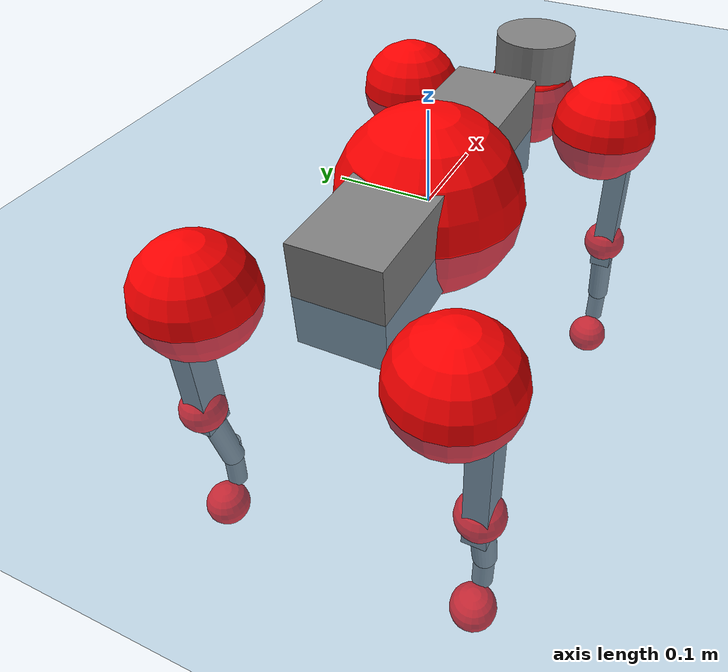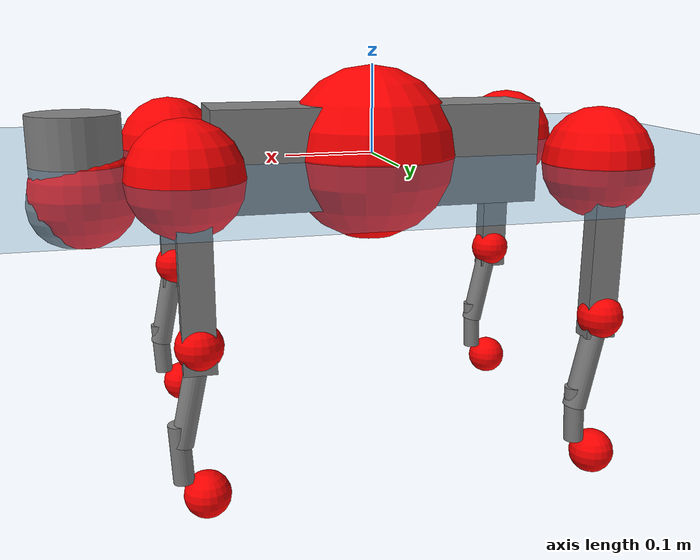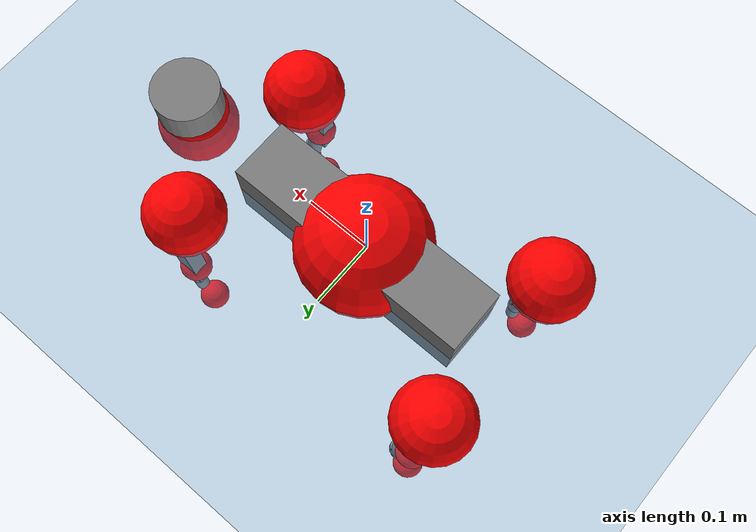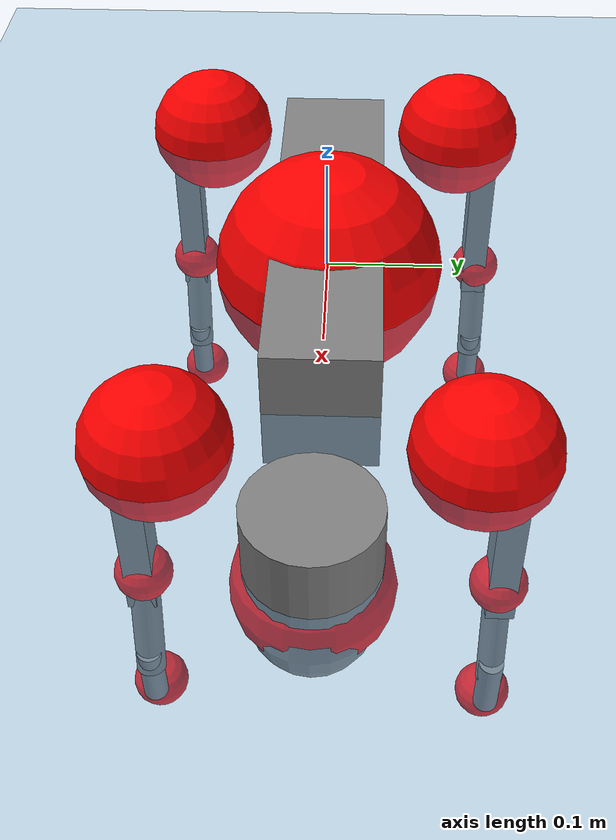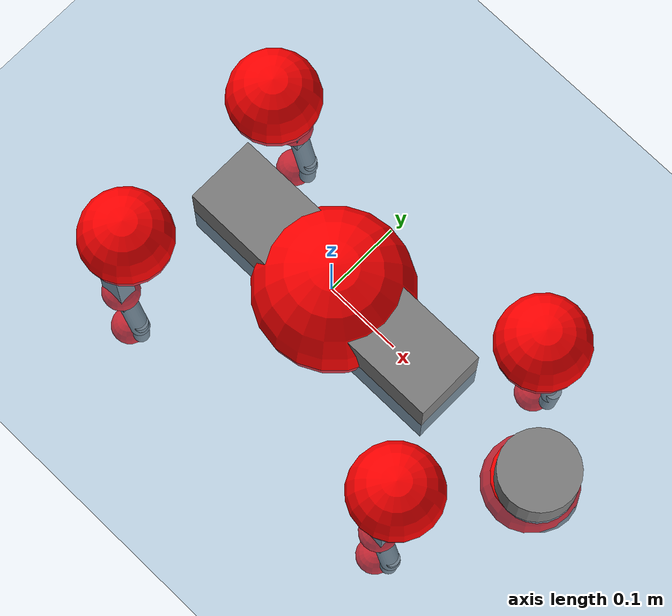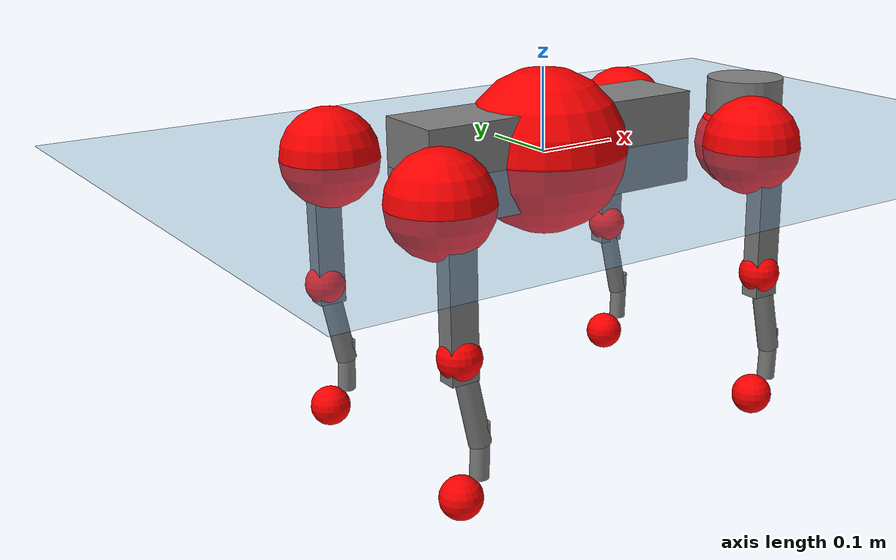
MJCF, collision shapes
<mujoco model="go2">
  <compiler angle="radian" assetdir="assets" balanceinertia="true" inertiafromgeom="false"/>

  <option timestep="0.005" density="1.2" viscosity="2e-05"/>

  <size nkey="1"/>

  <visual>
    <quality shadowsize="8192"/>
    <map shadowclip="0.5"/>
  </visual>

  <default>
    <default class="/">
      <geom contype="0" conaffinity="0" group="1" solref="-1000 -80"/>
      <site size="0.01 0.005 0.005" group="5"/>
      <general forcelimited="true" biastype="affine" gainprm="20" biasprm="0 -20 -0.5"/>
      <default class="go2">
        <joint armature="0.01" damping="0.01" frictionloss="0.2"/>
        <geom condim="1" margin="0.001"/>
        <default class="visual">
          <geom type="mesh" group="2"/>
        </default>
        <default class="collision">
          <geom group="3"/>
          <default class="foot">
            <geom size="0.022 0 0" condim="6" priority="1" friction="0.8 0.02 0.01" solimp="0.015 1 0.022"/>
          </default>
        </default>
        <default class="reward_collision_sphere">
          <geom group="5" rgba="1 0 0 1"/>
        </default>
      </default>
    </default>
  </default>

  <asset>
    <texture type="skybox" colorspace="auto" name="//unnamed_texture_0" builtin="gradient" rgb1="0.95 0.95 0.95" rgb2="0.95 0.95 0.95" width="100" height="600"/>
    <texture type="2d" colorspace="auto" name="texplane" builtin="checker" rgb1="0.345 0.575 0.748" rgb2="0.345 0.575 0.748" markrgb="1 1 1" width="512" height="512"/>
    <material name="MatPlane" class="/" texture="texplane" texuniform="true" texrepeat="2 2" specular="0.9"/>
    <material name="metal" class="/" rgba="0.9 0.95 0.95 1"/>
    <material name="black" class="/" rgba="0 0 0 1"/>
    <material name="white" class="/"/>
    <material name="gray" class="/" rgba="0.671705 0.692426 0.77427 1"/>
    <mesh name="base_0" class="/" file="base_0.obj"/>
    <mesh name="base_1" class="/" file="base_1.obj"/>
    <mesh name="base_2" class="/" file="base_2.obj"/>
    <mesh name="base_3" class="/" file="base_3.obj"/>
    <mesh name="base_4" class="/" file="base_4.obj"/>
    <mesh name="hip_0" class="/" file="hip_0.obj"/>
    <mesh name="hip_1" class="/" file="hip_1.obj"/>
    <mesh name="thigh_0" class="/" file="thigh_0.obj"/>
    <mesh name="thigh_1" class="/" file="thigh_1.obj"/>
    <mesh name="thigh_mirror_0" class="/" file="thigh_mirror_0.obj"/>
    <mesh name="thigh_mirror_1" class="/" file="thigh_mirror_1.obj"/>
    <mesh name="calf_0" class="/" file="calf_0.obj"/>
    <mesh name="calf_1" class="/" file="calf_1.obj"/>
    <mesh name="calf_mirror_0" class="/" file="calf_mirror_0.obj"/>
    <mesh name="calf_mirror_1" class="/" file="calf_mirror_1.obj"/>
    <mesh name="foot" class="/" file="foot.obj"/>
  </asset>

  <worldbody>
    <geom name="floor" class="/" size="100 100 0.125" type="plane" group="0" material="MatPlane"/>
    <light name="toplight_shadow" class="/" pos="0 0 5" dir="0.0990148 0.0990148 -0.990148" type="directional" ambient="0.04 0.04 0.04" diffuse="0.55 0.55 0.55" specular="0.12 0.12 0.12"/>
    <light name="toplight_fill" class="/" pos="0 0 5" dir="0.0990148 0.0990148 -0.990148" type="directional" castshadow="false" ambient="0.04 0.04 0.04" diffuse="0.3 0.3 0.3" specular="0.08 0.08 0.08"/>
    <body name="trunk" childclass="go2" pos="0.00243949 0.00139478 0.0008201" quat="1 4.55777e-05 -4.82364e-05 -2.30932e-05">
      <inertial pos="0.024095 0.000493083 -0.00401684" quat="0.00416052 0.713521 -0.0126263 0.700508" mass="6.6874" diaginertia="0.21464 0.142125 0.00601671"/>
      <joint name="//unnamed_joint_0" type="free" armature="0" damping="0" frictionloss="0"/>
      <geom name="//unnamed_geom_1" class="visual" material="black" mesh="base_0"/>
      <geom name="//unnamed_geom_2" class="visual" material="black" mesh="base_1"/>
      <geom name="//unnamed_geom_3" class="visual" material="black" mesh="base_2"/>
      <geom name="//unnamed_geom_4" class="visual" material="white" mesh="base_3"/>
      <geom name="//unnamed_geom_5" class="visual" material="gray" mesh="base_4"/>
      <geom name="trunk_1" class="collision" size="0.185257 0.0460433 0.0561384" type="box"/>
      <geom name="trunk_2" class="collision" size="0.0492442 0.0443198" pos="0.323424 0 0.00755981" type="cylinder"/>
      <geom name="trunk_3" class="collision" size="0.0462896" pos="0.332503 0 -0.0453589"/>
      <geom name="//unnamed_geom_9" class="reward_collision_sphere" size="0.0984884"/>
      <geom name="//unnamed_geom_10" class="reward_collision_sphere" size="0.0590931" pos="0.31775 0 -0.0340192"/>
      <site name="imu" pos="-0.0279645 0.00509917 0.0226543" size="0.00984884"/>
      <camera name="track" pos="0 -2.1277 0" quat="0.707107 0.707107 0 0" mode="trackcom"/>
      <camera name="ego_camera" pos="0.354064 0 0.0340192" quat="-0.5 -0.5 0.5 0.5"/>
      <body name="FL_hip" pos="0.21836 0.0494582 -0.00188085" quat="0.999999 0.000605385 0.000586281 -0.000808745">
        <inertial pos="-0.00831677 0.000850356 -0.000528859" quat="0.496706 0.497941 0.505781 0.499524" mass="0.652443" diaginertia="0.00167775 0.000785054 0.000120334"/>
        <joint name="FL_hip_joint" pos="0 0 0" axis="0.99999 0.00152233 0.00428177" range="-1.03241 1.04988" armature="0.00896348" damping="0.00965064" frictionloss="0.21806"/>
        <geom name="//unnamed_geom_11" class="visual" material="metal" mesh="hip_0"/>
        <geom name="//unnamed_geom_12" class="visual" material="gray" mesh="hip_1"/>
        <geom name="//unnamed_geom_13" class="collision" size="0.0453047 0.0196977" pos="0 0.085108 0" quat="0.707107 0.707107 0 0" type="cylinder"/>
        <geom name="//unnamed_geom_14" class="reward_collision_sphere" size="0.0590931" pos="0 0.0744695 0"/>
        <body name="FL_thigh" pos="-0.00326841 0.10082 -0.00153331" quat="0.999999 -0.000707766 -0.000574673 0.000657829">
          <inertial pos="-0.00362631 -0.023709 -0.0262829" quat="0.826691 0.0920043 -0.0256878 0.554488" mass="1.08145" diaginertia="0.0110774 0.00788092 0.000214248"/>
          <joint name="FL_thigh_joint" pos="0 0 0" axis="0.0014841 0.999825 -0.0186519" range="-1.53766 3.49104" armature="0.0113004" damping="0" frictionloss="0.171986"/>
          <geom name="//unnamed_geom_15" class="visual" material="metal" mesh="thigh_0"/>
          <geom name="//unnamed_geom_16" class="visual" material="gray" mesh="thigh_1"/>
          <geom name="//unnamed_geom_17" class="collision" size="0.10489 0.0120648 0.016743" pos="0 0 -0.080512" quat="0.707107 0 0.707107 0" type="box"/>
          <body name="FL_calf" pos="-0.000835862 -0.00175471 -0.160032" quat="0.999999 -0.00119999 -0.000764509 2.91884e-05">
            <inertial pos="0.0093199 -9.03765e-05 -0.105795" quat="0.715593 0.00559593 -0.0113422 0.698403" mass="0.246072" diaginertia="0.00279476 0.00206894 1.31032e-05"/>
            <joint name="FL_calf_joint" pos="0 0 0" axis="0.000336797 1 -0.000131913" stiffness="0.00229573" range="-2.72522 -0.82019" armature="0.0102347" damping="0" frictionloss="0.187081"/>
            <geom name="//unnamed_geom_18" class="visual" material="gray" mesh="calf_0"/>
            <geom name="//unnamed_geom_19" class="visual" material="black" mesh="calf_1"/>
            <geom name="FL_calf0" class="collision" size="0.0118186 0.0590931" pos="0.00907858 0 -0.0453589" quat="0.994493 0 -0.104807 0" type="cylinder"/>
            <geom name="//unnamed_geom_21" class="collision" size="0.0108337 0.0320087" pos="0.0226964 0 -0.111885" quat="0.999688 0 0.0249974 0" type="cylinder"/>
            <geom name="//unnamed_geom_22" class="visual" pos="0 0 -0.161024" quat="1 0 0 0" material="black" mesh="foot"/>
            <geom name="FL_foot" class="foot" size="0.021496" pos="-0.00226964 0 -0.161024"/>
            <geom name="//unnamed_geom_24" class="reward_collision_sphere" size="0.0246221"/>
            <geom name="//unnamed_geom_25" class="reward_collision_sphere" size="0.0246221" pos="-0.00226964 0 -0.161024"/>
            <site name="FL_foot" class="foot" pos="-0.00226964 0 -0.161024" size="0.00984884"/>
          </body>
        </body>
      </body>
      <body name="FR_hip" pos="0.218065 -0.0478424 -0.00165426" quat="1 -9.31855e-05 0.000326324 0.00023601">
        <inertial pos="-0.0044013 -0.00155698 -0.00158094" quat="0.494117 0.510507 0.490448 0.50467" mass="0.655574" diaginertia="0.00171871 0.000803474 0.000121142"/>
        <joint name="FR_hip_joint" pos="0 0 0" axis="0.999929 -0.0102618 0.00609702" range="-1.0927 1.02728" armature="0.00981458" damping="0.0172453" frictionloss="0.170559"/>
        <geom name="//unnamed_geom_26" class="visual" pos="0 2.68202e-09 1.15038e-07" quat="4.63268e-05 1 0 0" material="metal" mesh="hip_0"/>
        <geom name="//unnamed_geom_27" class="visual" pos="0 4.34788e-09 -2.84532e-07" quat="4.63268e-05 1 0 0" material="gray" mesh="hip_1"/>
        <geom name="//unnamed_geom_28" class="collision" size="0.0453047 0.0196977" pos="0 -0.085108 0" quat="0.707107 0.707107 0 0" type="cylinder"/>
        <geom name="//unnamed_geom_29" class="reward_collision_sphere" size="0.0590931" pos="0 -0.0744695 0"/>
        <body name="FR_thigh" pos="-0.000195681 -0.100113 0.00337146" quat="1 5.36717e-06 -9.35382e-05 9.89891e-06">
          <inertial pos="-0.00620479 0.0249788 -0.0242732" quat="0.551388 -0.0193289 0.0861741 0.829561" mass="1.1106" diaginertia="0.0113354 0.00795275 0.000218971"/>
          <joint name="FR_thigh_joint" pos="0 0 0" axis="0.0123735 -0.999912 0.00481093" stiffness="0.00450543" range="-3.47151 1.6135" armature="0.00970074" damping="0.0050733" frictionloss="0.190956"/>
          <geom name="//unnamed_geom_30" class="visual" material="metal" mesh="thigh_mirror_0"/>
          <geom name="//unnamed_geom_31" class="visual" material="gray" mesh="thigh_mirror_1"/>
          <geom name="//unnamed_geom_32" class="collision" size="0.10489 0.0120648 0.016743" pos="0 0 -0.080512" quat="0.707107 0 0.707107 0" type="box"/>
          <body name="FR_calf" pos="-0.000189054 0.00142503 -0.157879" quat="1 -0.000813739 6.93062e-05 -6.81464e-05">
            <inertial pos="0.00817353 -0.0019663 -0.104393" quat="0.701449 -0.00624273 0.00326988 0.712684" mass="0.225518" diaginertia="0.00291773 0.00208365 1.35574e-05"/>
            <joint name="FR_calf_joint" pos="0 0 0" axis="0.0135571 -0.999908 0.000493929" stiffness="0.00896458" range="0.796761 2.73333" armature="0.00931852" damping="0.0194897" frictionloss="0.221885"/>
            <geom name="//unnamed_geom_33" class="visual" material="gray" mesh="calf_mirror_0"/>
            <geom name="//unnamed_geom_34" class="visual" material="black" mesh="calf_mirror_1"/>
            <geom name="FR_calf0" class="collision" size="0.0128035 0.0590931" pos="0.0113482 0 -0.0453589" quat="0.995004 0 -0.0998334 0" type="cylinder"/>
            <geom name="//unnamed_geom_36" class="collision" size="0.0108337 0.0320087" pos="0.0226964 0 -0.111885" quat="0.999688 0 0.0249974 0" type="cylinder"/>
            <geom name="//unnamed_geom_37" class="visual" pos="0 0 -0.161024" quat="1 0 0 0" material="black" mesh="foot"/>
            <geom name="FR_foot" class="foot" size="0.0205651" pos="-0.00226964 0 -0.161024"/>
            <geom name="//unnamed_geom_39" class="reward_collision_sphere" size="0.0246221"/>
            <geom name="//unnamed_geom_40" class="reward_collision_sphere" size="0.0246221" pos="-0.00226964 0 -0.161024"/>
            <site name="FR_foot" class="foot" pos="-0.00226964 0 -0.161024" size="0.00984884"/>
          </body>
        </body>
      </body>
      <body name="RL_hip" pos="-0.218815 0.0465645 -0.000817235" quat="1 0.000415891 -9.30551e-05 0.000161126">
        <inertial pos="0.00818309 0.000789965 0.000583985" quat="0.512597 0.494121 0.488633 0.504308" mass="0.627853" diaginertia="0.00165362 0.000805286 0.000114124"/>
        <joint name="RL_hip_joint" pos="0 0 0" axis="-0.999939 -0.00900031 -0.0063366" stiffness="0.00228896" range="-0.991409 1.06941" armature="0.0098057" damping="0.0193006" frictionloss="0.187463"/>
        <geom name="//unnamed_geom_41" class="visual" pos="-3.3003e-09 0 -6.46936e-07" quat="4.63268e-05 0 1 0" material="metal" mesh="hip_0"/>
        <geom name="//unnamed_geom_42" class="visual" pos="-5.35019e-09 0 -5.7374e-07" quat="4.63268e-05 0 1 0" material="gray" mesh="hip_1"/>
        <geom name="//unnamed_geom_43" class="collision" size="0.0453047 0.0196977" pos="0 0.085108 0" quat="0.707107 0.707107 0 0" type="cylinder"/>
        <geom name="//unnamed_geom_44" class="reward_collision_sphere" size="0.0590931" pos="0 0.0744695 0"/>
        <body name="RL_thigh" pos="0.00258471 0.102925 -0.0012762" quat="1 -0.00048473 -0.000409859 -0.000218242">
          <inertial pos="-0.00456633 -0.021805 -0.0252961" quat="0.83471 0.0826369 -0.0301834 0.543617" mass="1.13316" diaginertia="0.0111887 0.00817334 0.000220617"/>
          <joint name="RL_thigh_joint" pos="0 0 0" axis="-0.00528652 0.999956 -0.00773001" range="-0.467243 4.59316" armature="0.0109022" damping="0.00536067" frictionloss="0.223186"/>
          <geom name="//unnamed_geom_45" class="visual" material="metal" mesh="thigh_0"/>
          <geom name="//unnamed_geom_46" class="visual" material="gray" mesh="thigh_1"/>
          <geom name="//unnamed_geom_47" class="collision" size="0.10489 0.0120648 0.016743" pos="0 0 -0.080512" quat="0.707107 0 0.707107 0" type="box"/>
          <body name="RL_calf" pos="-0.00269956 0.00224257 -0.163034" quat="1 0.00043581 -4.69718e-06 0.000498764">
            <inertial pos="0.00619513 -0.000218563 -0.105867" quat="0.713588 0.0127693 -0.0058039 0.700425" mass="0.225278" diaginertia="0.00281692 0.00195871 1.32165e-05"/>
            <joint name="RL_calf_joint" pos="0 0 0" axis="0.0192162 0.999766 0.00996537" range="-2.72784 -0.890006" armature="0.00973476" damping="0.00360239" frictionloss="0.169494"/>
            <geom name="//unnamed_geom_48" class="visual" material="gray" mesh="calf_0"/>
            <geom name="//unnamed_geom_49" class="visual" material="black" mesh="calf_1"/>
            <geom name="RL_calf0" class="collision" size="0.0128035 0.0590931" pos="0.0113482 0 -0.0453589" quat="0.995004 0 -0.0998334 0" type="cylinder"/>
            <geom name="//unnamed_geom_51" class="collision" size="0.0108337 0.0320087" pos="0.0226964 0 -0.111885" quat="0.999688 0 0.0249974 0" type="cylinder"/>
            <geom name="//unnamed_geom_52" class="visual" pos="0 0 -0.161024" quat="1 0 0 0" material="black" mesh="foot"/>
            <geom name="RL_foot" class="foot" size="0.0176676" pos="-0.00226964 0 -0.161024"/>
            <geom name="//unnamed_geom_54" class="reward_collision_sphere" size="0.0246221"/>
            <geom name="//unnamed_geom_55" class="reward_collision_sphere" size="0.0246221" pos="-0.00226964 0 -0.161024"/>
            <site name="RL_foot" class="foot" pos="-0.00226964 0 -0.161024" size="0.00984884"/>
          </body>
        </body>
      </body>
      <body name="RR_hip" pos="-0.2208 -0.0498077 -0.00126607" quat="1 -0.00025505 -0.000222336 0.000404042">
        <inertial pos="0.00894803 0.000255186 0.000630057" quat="0.506182 0.494866 0.491917 0.506859" mass="0.655193" diaginertia="0.00173282 0.000848094 0.000123656"/>
        <joint name="RR_hip_joint" pos="0 0 0" axis="-0.999963 -0.00799554 -0.00301781" range="-1.05137 1.06116" armature="0.00931681" damping="0.015405" frictionloss="0.2003"/>
        <geom name="//unnamed_geom_56" class="visual" pos="3.29785e-09 2.68202e-09 -7.61973e-07" quat="2.14617e-09 4.63268e-05 4.63268e-05 -1" material="metal" mesh="hip_0"/>
        <geom name="//unnamed_geom_57" class="visual" pos="5.35627e-09 4.34788e-09 -2.89208e-07" quat="2.14617e-09 4.63268e-05 4.63268e-05 -1" material="gray" mesh="hip_1"/>
        <geom name="//unnamed_geom_58" class="collision" size="0.0453047 0.0196977" pos="0 -0.085108 0" quat="0.707107 0.707107 0 0" type="cylinder"/>
        <geom name="//unnamed_geom_59" class="reward_collision_sphere" size="0.0590931" pos="0 -0.0744695 0"/>
        <body name="RR_thigh" pos="0.000612285 -0.102702 0.00122222" quat="1 -0.000294623 -0.000542753 0.000613748">
          <inertial pos="-0.00432807 0.0245664 -0.0242741" quat="0.554871 -0.0161053 0.0887175 0.827036" mass="1.10912" diaginertia="0.0113126 0.00828156 0.000221961"/>
          <joint name="RR_thigh_joint" pos="0 0 0" axis="-0.00405847 -0.999903 -0.0133205" range="-4.52869 0.546005" armature="0.0110318" damping="0.00146219" frictionloss="0.17538"/>
          <geom name="//unnamed_geom_60" class="visual" material="metal" mesh="thigh_mirror_0"/>
          <geom name="//unnamed_geom_61" class="visual" material="gray" mesh="thigh_mirror_1"/>
          <geom name="//unnamed_geom_62" class="collision" size="0.10489 0.0120648 0.016743" pos="0 0 -0.080512" quat="0.707107 0 0.707107 0" type="box"/>
          <body name="RR_calf" pos="0.000847289 0.00110517 -0.1608" quat="1 -2.20024e-05 -8.82688e-06 1.63954e-05">
            <inertial pos="0.00457283 -0.000977608 -0.10503" quat="0.70291 -0.00145673 0.00253934 0.711273" mass="0.241271" diaginertia="0.00274103 0.00208512 1.32578e-05"/>
            <joint name="RR_calf_joint" pos="0 0 0" axis="0.00128597 -0.999998 0.0015776" range="0.814678 2.765" armature="0.00974182" damping="0.0136726" frictionloss="0.216227"/>
            <geom name="//unnamed_geom_63" class="visual" material="gray" mesh="calf_mirror_0"/>
            <geom name="//unnamed_geom_64" class="visual" material="black" mesh="calf_mirror_1"/>
            <geom name="RR_calf0" class="collision" size="0.0128035 0.0590931" pos="0.0113482 0 -0.0453589" quat="0.995004 0 -0.0998334 0" type="cylinder"/>
            <geom name="//unnamed_geom_66" class="collision" size="0.0108337 0.0320087" pos="0.0226964 0 -0.111885" quat="0.999688 0 0.0249974 0" type="cylinder"/>
            <geom name="//unnamed_geom_67" class="visual" pos="0 0 -0.161024" quat="1 0 0 0" material="black" mesh="foot"/>
            <geom name="RR_foot" class="foot" size="0.0226456" pos="-0.00226964 0 -0.161024"/>
            <geom name="//unnamed_geom_69" class="reward_collision_sphere" size="0.0246221"/>
            <geom name="//unnamed_geom_70" class="reward_collision_sphere" size="0.0246221" pos="-0.00226964 0 -0.161024"/>
            <site name="RR_foot" class="foot" pos="-0.00226964 0 -0.161024" size="0.00984884"/>
          </body>
        </body>
      </body>
    </body>
  </worldbody>

  <contact>
    <pair class="/" geom1="floor" geom2="FL_foot" name="//unnamed_contact_0"/>
    <pair class="/" geom1="floor" geom2="FR_foot" name="//unnamed_contact_1"/>
    <pair class="/" geom1="floor" geom2="RL_foot" name="//unnamed_contact_2"/>
    <pair class="/" geom1="floor" geom2="RR_foot" name="//unnamed_contact_3"/>
  </contact>

  <actuator>
    <general name="FL_hip" class="/" joint="FL_hip_joint" forcerange="-23.2788 23.2788" gainprm="19.7866" biasprm="0 -19.7866 -0.497367"/>
    <general name="FL_thigh" class="/" joint="FL_thigh_joint" forcerange="-21.0415 21.0415" gainprm="19.7866" biasprm="0 -19.7866 -0.497367"/>
    <general name="FL_calf" class="/" joint="FL_calf_joint" forcerange="-48.1663 48.1663" gainprm="19.7866" biasprm="0 -19.7866 -0.497367"/>
    <general name="FR_hip" class="/" joint="FR_hip_joint" forcerange="-23.4379 23.4379" gainprm="19.7866" biasprm="0 -19.7866 -0.497367"/>
    <general name="FR_thigh" class="/" joint="FR_thigh_joint" forcerange="-22.4104 22.4104" gainprm="19.7866" biasprm="0 -19.7866 -0.497367"/>
    <general name="FR_calf" class="/" joint="FR_calf_joint" forcerange="-48.984 48.984" gainprm="19.7866" biasprm="0 -19.7866 -0.497367"/>
    <general name="RL_hip" class="/" joint="RL_hip_joint" forcerange="-23.5469 23.5469" gainprm="19.7866" biasprm="0 -19.7866 -0.497367"/>
    <general name="RL_thigh" class="/" joint="RL_thigh_joint" forcerange="-25.7463 25.7463" gainprm="19.7866" biasprm="0 -19.7866 -0.497367"/>
    <general name="RL_calf" class="/" joint="RL_calf_joint" forcerange="-40.9988 40.9988" gainprm="19.7866" biasprm="0 -19.7866 -0.497367"/>
    <general name="RR_hip" class="/" joint="RR_hip_joint" forcerange="-23.9056 23.9056" gainprm="19.7866" biasprm="0 -19.7866 -0.497367"/>
    <general name="RR_thigh" class="/" joint="RR_thigh_joint" forcerange="-23.7819 23.7819" gainprm="19.7866" biasprm="0 -19.7866 -0.497367"/>
    <general name="RR_calf" class="/" joint="RR_calf_joint" forcerange="-42.5024 42.5024" gainprm="19.7866" biasprm="0 -19.7866 -0.497367"/>
  </actuator>

  <sensor>
    <gyro site="imu" name="imu_angular_velocity"/>
    <velocimeter site="imu" name="imu_linear_velocity"/>
    <framelinvel objtype="site" objname="FL_foot" name="FL_foot_global_linear_velocity"/>
    <framelinvel objtype="site" objname="FR_foot" name="FR_foot_global_linear_velocity"/>
    <framelinvel objtype="site" objname="RL_foot" name="RL_foot_global_linear_velocity"/>
    <framelinvel objtype="site" objname="RR_foot" name="RR_foot_global_linear_velocity"/>
  </sensor>

  <keyframe>
    <key name="home" qpos="0 0 0.325 1 0 0 0 0.1 0.8 -1.5 -0.1 -0.8 1.5 -0.1 0.8 -1.5 0.1 -0.8 1.5"/>
  </keyframe>
</mujoco>
